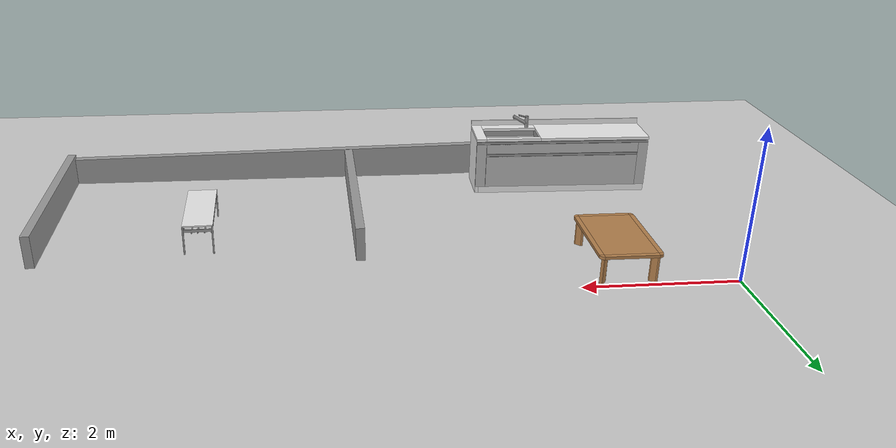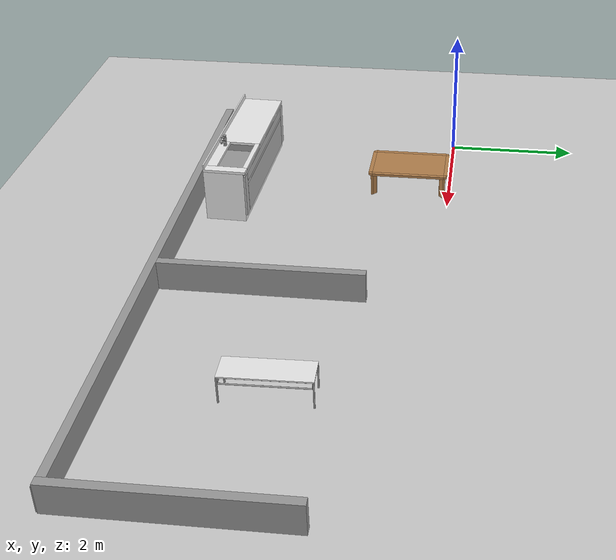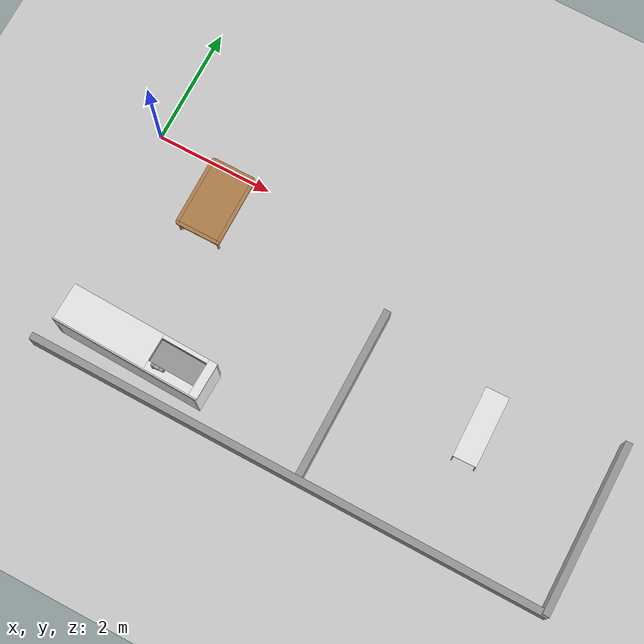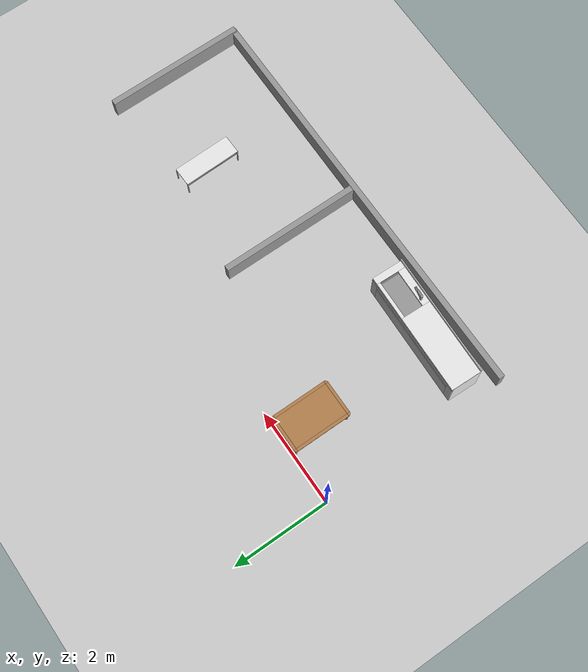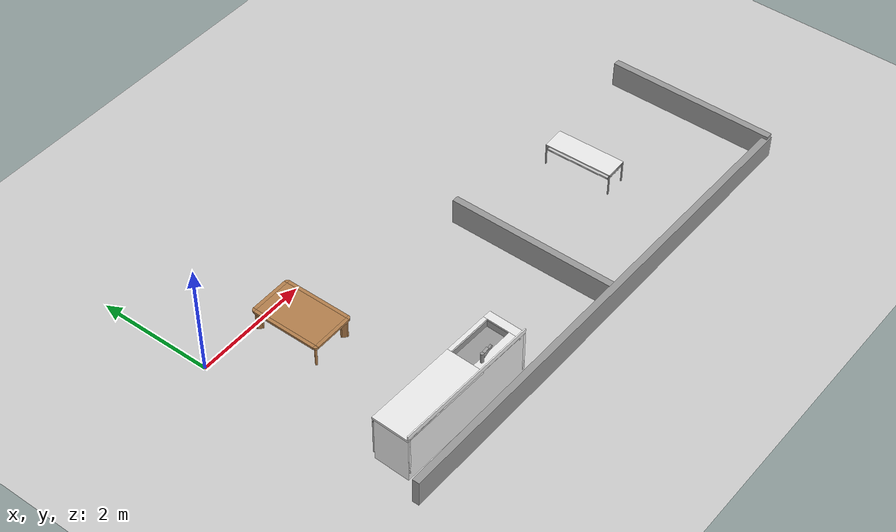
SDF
<sdf version="1.7">
 <world name="default">
  <model name="ground_plane">
   <static>1</static>
   <link name="link">
    <collision name="collision">
     <geometry><plane><normal>0 0 1</normal><size>100 100</size></plane></geometry>
     <surface><friction><ode><mu>100</mu><mu2>50</mu2></ode></friction></surface>
    </collision>
    <visual name="visual">
     <cast_shadows>0</cast_shadows>
     <geometry><plane><normal>0 0 1</normal><size>100 100</size></plane></geometry>
     <material>
      <script><uri>file://media/materials/scripts/gazebo.material</uri><name>Gazebo/Grey</name></script>
     </material>
    </visual>
   </link>
  </model>
  <model name="wall_clone">
   <link name="link">
    <inertial>
     <mass>1</mass>
     <inertia>
      <ixx>0.166667</ixx>
      <ixy>0</ixy>
      <ixz>0</ixz>
      <iyy>0.166667</iyy>
      <iyz>0</iyz>
      <izz>0.166667</izz>
     </inertia>
    </inertial>
    <visual name="visual">
     <geometry><box><size>0.120264 8.94791 0.469751</size></box></geometry>
     <material>
      <script><name>Gazebo/Grey</name><uri>file://media/materials/scripts/gazebo.material</uri></script>
      <shader type="pixel"/>
     </material>
    </visual>
    <collision name="collision">
     <geometry><box><size>0.120264 8.94791 0.469751</size></box></geometry>
     <surface>
      <friction>
       <ode><mu>1</mu><mu2>1</mu2><fdir1>0 0 0</fdir1><slip1>0</slip1><slip2>0</slip2></ode>
       <torsional>
        <coefficient>1</coefficient>
        <patch_radius>0</patch_radius>
        <surface_radius>0</surface_radius>
        <use_patch_radius>1</use_patch_radius>
        <ode><slip>0</slip></ode>
       </torsional>
      </friction>
      <bounce><restitution_coefficient>0</restitution_coefficient><threshold>1e+06</threshold></bounce>
      <contact>
       <collide_without_contact>0</collide_without_contact>
       <collide_without_contact_bitmask>1</collide_without_contact_bitmask>
       <collide_bitmask>1</collide_bitmask>
       <ode>
        <soft_cfm>0</soft_cfm>
        <soft_erp>0.2</soft_erp>
        <kp>1e+13</kp>
        <kd>1</kd>
        <max_vel>0.01</max_vel>
        <min_depth>0</min_depth>
       </ode>
       <bullet>
        <split_impulse>1</split_impulse>
        <split_impulse_penetration_threshold>-0.01</split_impulse_penetration_threshold>
        <soft_cfm>0</soft_cfm>
        <soft_erp>0.2</soft_erp>
        <kp>1e+13</kp>
        <kd>1</kd>
       </bullet>
      </contact>
     </surface>
    </collision>
   </link>
   <static>1</static>
   <pose>4.43377 -3.93577 0.206052 -0.015237 0.003622 -1.57495</pose>
  </model>
  <model name="wall_3m_clone">
   <link name="link">
    <inertial>
     <mass>0.327712</mass>
     <inertia>
      <ixx>0.240849</ixx>
      <ixy>0</ixy>
      <ixz>0</ixz>
      <iyy>0.00642123</iyy>
      <iyz>0</iyz>
      <izz>0.235218</izz>
     </inertia>
    </inertial>
    <visual name="visual">
     <geometry><box><size>0.120264 2.93234 0.469751</size></box></geometry>
     <material>
      <script><name>Gazebo/Grey</name><uri>file://media/materials/scripts/gazebo.material</uri></script>
      <shader type="pixel"/>
     </material>
    </visual>
    <collision name="collision">
     <geometry><box><size>0.120264 2.93234 0.469751</size></box></geometry>
     <surface>
      <friction>
       <ode><mu>1</mu><mu2>1</mu2><fdir1>0 0 0</fdir1><slip1>0</slip1><slip2>0</slip2></ode>
       <torsional>
        <coefficient>1</coefficient>
        <patch_radius>0</patch_radius>
        <surface_radius>0</surface_radius>
        <use_patch_radius>1</use_patch_radius>
        <ode><slip>0</slip></ode>
       </torsional>
      </friction>
      <bounce><restitution_coefficient>0</restitution_coefficient><threshold>1e+06</threshold></bounce>
      <contact>
       <collide_without_contact>0</collide_without_contact>
       <collide_without_contact_bitmask>1</collide_without_contact_bitmask>
       <collide_bitmask>1</collide_bitmask>
       <ode>
        <soft_cfm>0</soft_cfm>
        <soft_erp>0.2</soft_erp>
        <kp>1e+13</kp>
        <kd>1</kd>
        <max_vel>0.01</max_vel>
        <min_depth>0</min_depth>
       </ode>
       <bullet>
        <split_impulse>1</split_impulse>
        <split_impulse_penetration_threshold>-0.01</split_impulse_penetration_threshold>
        <soft_cfm>0</soft_cfm>
        <soft_erp>0.2</soft_erp>
        <kp>1e+13</kp>
        <kd>1</kd>
       </bullet>
      </contact>
     </surface>
    </collision>
   </link>
   <static>1</static>
   <pose>4.64146 -2.42164 0.206052 0.00367 0.015225 -0.000955</pose>
  </model>
  <model name="wall_3m_clone_1">
   <link name="link">
    <inertial>
     <mass>0.327712</mass>
     <inertia>
      <ixx>0.240849</ixx>
      <ixy>0</ixy>
      <ixz>0</ixz>
      <iyy>0.00642123</iyy>
      <iyz>0</iyz>
      <izz>0.235218</izz>
     </inertia>
    </inertial>
    <visual name="visual">
     <geometry><box><size>0.120264 2.93234 0.469751</size></box></geometry>
     <material>
      <script><name>Gazebo/Grey</name><uri>file://media/materials/scripts/gazebo.material</uri></script>
      <shader type="pixel"/>
     </material>
    </visual>
    <collision name="collision">
     <geometry><box><size>0.120264 2.93234 0.469751</size></box></geometry>
     <surface>
      <friction>
       <ode><mu>1</mu><mu2>1</mu2><fdir1>0 0 0</fdir1><slip1>0</slip1><slip2>0</slip2></ode>
       <torsional>
        <coefficient>1</coefficient>
        <patch_radius>0</patch_radius>
        <surface_radius>0</surface_radius>
        <use_patch_radius>1</use_patch_radius>
        <ode><slip>0</slip></ode>
       </torsional>
      </friction>
      <bounce><restitution_coefficient>0</restitution_coefficient><threshold>1e+06</threshold></bounce>
      <contact>
       <collide_without_contact>0</collide_without_contact>
       <collide_without_contact_bitmask>1</collide_without_contact_bitmask>
       <collide_bitmask>1</collide_bitmask>
       <ode>
        <soft_cfm>0</soft_cfm>
        <soft_erp>0.2</soft_erp>
        <kp>1e+13</kp>
        <kd>1</kd>
        <max_vel>0.01</max_vel>
        <min_depth>0</min_depth>
       </ode>
       <bullet>
        <split_impulse>1</split_impulse>
        <split_impulse_penetration_threshold>-0.01</split_impulse_penetration_threshold>
        <soft_cfm>0</soft_cfm>
        <soft_erp>0.2</soft_erp>
        <kp>1e+13</kp>
        <kd>1</kd>
       </bullet>
      </contact>
     </surface>
    </collision>
   </link>
   <static>1</static>
   <pose>8.85891 -2.52434 0.196172 -0.003765 -0.015202 -3.13632</pose>
  </model>
  <model name="kitchen_lowtable">
   <link name="link">
    <inertial>
     <mass>10</mass>
     <inertia><ixx>1</ixx><ixy>0</ixy><ixz>0</ixz><iyy>1</iyy><iyz>0</iyz><izz>1</izz></inertia>
    </inertial>
    <visual name="center_board">
     <pose>0 0 0.38 0 -0 0</pose>
     <geometry><box><size>0.68 1.13 0.04</size></box></geometry>
     <material>
      <script><uri>model://base_materials/wood/scripts/wood.material</uri><name>base_materials/wood</name></script>
     </material>
    </visual>
    <collision name="collision_center_board">
     <pose>0 0 0.38 0 -0 0</pose>
     <geometry><box><size>0.68 1.13 0.04</size></box></geometry>
    </collision>
    <visual name="front_board">
     <pose>0.37 0 0.38 0 -0 0</pose>
     <geometry><box><size>0.06 1.13 0.04</size></box></geometry>
     <material>
      <script><uri>model://base_materials/wood/scripts/wood.material</uri><name>base_materials/wood</name></script>
     </material>
    </visual>
    <collision name="collision_front_board">
     <pose>0.37 0 0.38 0 -0 0</pose>
     <geometry><box><size>0.06 1.13 0.04</size></box></geometry>
    </collision>
    <visual name="back_board">
     <pose>-0.37 0 0.38 0 -0 0</pose>
     <geometry><box><size>0.06 1.13 0.04</size></box></geometry>
     <material>
      <script><uri>model://base_materials/wood/scripts/wood.material</uri><name>base_materials/wood</name></script>
     </material>
    </visual>
    <collision name="collision_back_board">
     <pose>-0.37 0 0.38 0 -0 0</pose>
     <geometry><box><size>0.06 1.13 0.04</size></box></geometry>
    </collision>
    <visual name="right_board">
     <pose>0 0.595 0.38 0 -0 0</pose>
     <geometry><box><size>0.68 0.06 0.04</size></box></geometry>
     <material>
      <script><uri>model://base_materials/wood/scripts/wood.material</uri><name>base_materials/wood</name></script>
     </material>
    </visual>
    <collision name="collision_right_board">
     <pose>0 0.595 0.38 0 -0 0</pose>
     <geometry><box><size>0.68 0.06 0.04</size></box></geometry>
    </collision>
    <visual name="left_board">
     <pose>0 -0.595 0.38 0 -0 0</pose>
     <geometry><box><size>0.68 0.06 0.04</size></box></geometry>
     <material>
      <script><uri>model://base_materials/wood/scripts/wood.material</uri><name>base_materials/wood</name></script>
     </material>
    </visual>
    <collision name="collision_left_board">
     <pose>0 -0.595 0.38 0 -0 0</pose>
     <geometry><box><size>0.68 0.06 0.04</size></box></geometry>
    </collision>
    <visual name="front_right_corner_board">
     <pose>0.34 0.565 0.38 0 -0 0</pose>
     <geometry><cylinder><radius>0.06</radius><length>0.039</length></cylinder></geometry>
     <material>
      <script><uri>model://base_materials/wood/scripts/wood.material</uri><name>base_materials/wood</name></script>
     </material>
    </visual>
    <collision name="collision_front_right_corner_board">
     <pose>0.34 0.565 0.38 0 -0 0</pose>
     <geometry><cylinder><radius>0.06</radius><length>0.039</length></cylinder></geometry>
    </collision>
    <visual name="front_left_corner_board">
     <pose>0.34 -0.565 0.38 0 -0 0</pose>
     <geometry><cylinder><radius>0.06</radius><length>0.039</length></cylinder></geometry>
     <material>
      <script><uri>model://base_materials/wood/scripts/wood.material</uri><name>base_materials/wood</name></script>
     </material>
    </visual>
    <collision name="collision_front_left_corner_board">
     <pose>0.34 -0.565 0.38 0 -0 0</pose>
     <geometry><cylinder><radius>0.06</radius><length>0.039</length></cylinder></geometry>
    </collision>
    <visual name="front_back_right_corner_board">
     <pose>-0.34 0.565 0.38 0 -0 0</pose>
     <geometry><cylinder><radius>0.06</radius><length>0.039</length></cylinder></geometry>
     <material>
      <script><uri>model://base_materials/wood/scripts/wood.material</uri><name>base_materials/wood</name></script>
     </material>
    </visual>
    <collision name="collision_back_right_corner_board">
     <pose>-0.34 0.565 0.38 0 -0 0</pose>
     <geometry><cylinder><radius>0.06</radius><length>0.039</length></cylinder></geometry>
    </collision>
    <visual name="front_back_left_corner_board">
     <pose>-0.34 -0.565 0.38 0 -0 0</pose>
     <geometry><cylinder><radius>0.06</radius><length>0.039</length></cylinder></geometry>
     <material>
      <script><uri>model://base_materials/wood/scripts/wood.material</uri><name>base_materials/wood</name></script>
     </material>
    </visual>
    <collision name="collision_back_left_corner_board">
     <pose>-0.34 -0.565 0.38 0 -0 0</pose>
     <geometry><cylinder><radius>0.06</radius><length>0.039</length></cylinder></geometry>
    </collision>
    <visual name="front_left_corner_frame1">
     <pose>0.345858 -0.57086 0.18 0 -0 0</pose>
     <geometry><cylinder><radius>0.02</radius><length>0.36</length></cylinder></geometry>
     <material>
      <script><uri>model://base_materials/wood/scripts/wood.material</uri><name>base_materials/wood</name></script>
     </material>
    </visual>
    <collision name="collision_front_left_corner_frame1">
     <pose>0.345858 -0.57086 0.18 0 -0 0</pose>
     <geometry><cylinder><radius>0.02</radius><length>0.36</length></cylinder></geometry>
    </collision>
    <visual name="front_left_corner_frame2">
     <pose>0.317574 -0.54257 0.18 0 -0 0.7854</pose>
     <geometry><box><size>0.04 0.08 0.36</size></box></geometry>
     <material>
      <script><uri>model://base_materials/wood/scripts/wood.material</uri><name>base_materials/wood</name></script>
     </material>
    </visual>
    <collision name="collision_front_left_corner_frame2">
     <pose>0.317574 -0.54257 0.18 0 -0 0.7854</pose>
     <geometry><box><size>0.04 0.08 0.36</size></box></geometry>
    </collision>
    <visual name="front_left_corner_frame3">
     <pose>0.289289 -0.51429 0.18 0 -0 0</pose>
     <geometry><cylinder><radius>0.02</radius><length>0.36</length></cylinder></geometry>
     <material>
      <script><uri>model://base_materials/wood/scripts/wood.material</uri><name>base_materials/wood</name></script>
     </material>
    </visual>
    <collision name="collision_front_left_corner_frame3">
     <pose>0.289289 -0.51429 0.18 0 -0 0</pose>
     <geometry><cylinder><radius>0.02</radius><length>0.36</length></cylinder></geometry>
    </collision>
    <visual name="front_right_corner_frame1">
     <pose>0.345858 0.57086 0.18 0 -0 0</pose>
     <geometry><cylinder><radius>0.02</radius><length>0.36</length></cylinder></geometry>
     <material>
      <script><uri>model://base_materials/wood/scripts/wood.material</uri><name>base_materials/wood</name></script>
     </material>
    </visual>
    <collision name="collision_front_right_corner_frame1">
     <pose>0.345858 0.57086 0.18 0 -0 0</pose>
     <geometry><cylinder><radius>0.02</radius><length>0.36</length></cylinder></geometry>
    </collision>
    <visual name="front_right_corner_frame2">
     <pose>0.317574 0.54257 0.18 0 0 -0.7854</pose>
     <geometry><box><size>0.04 0.08 0.36</size></box></geometry>
     <material>
      <script><uri>model://base_materials/wood/scripts/wood.material</uri><name>base_materials/wood</name></script>
     </material>
    </visual>
    <collision name="collision_front_right_corner_frame2">
     <pose>0.317574 0.54257 0.18 0 0 -0.7854</pose>
     <geometry><box><size>0.04 0.08 0.36</size></box></geometry>
    </collision>
    <visual name="front_right_corner_frame3">
     <pose>0.289289 0.51429 0.18 0 -0 0</pose>
     <geometry><cylinder><radius>0.02</radius><length>0.36</length></cylinder></geometry>
     <material>
      <script><uri>model://base_materials/wood/scripts/wood.material</uri><name>base_materials/wood</name></script>
     </material>
    </visual>
    <collision name="collision_front_right_corner_frame3">
     <pose>0.289289 0.51429 0.18 0 -0 0</pose>
     <geometry><cylinder><radius>0.02</radius><length>0.36</length></cylinder></geometry>
    </collision>
    <visual name="back_left_corner_frame1">
     <pose>-0.345858 -0.57086 0.18 0 -0 0</pose>
     <geometry><cylinder><radius>0.02</radius><length>0.36</length></cylinder></geometry>
     <material>
      <script><uri>model://base_materials/wood/scripts/wood.material</uri><name>base_materials/wood</name></script>
     </material>
    </visual>
    <collision name="collision_back_left_corner_frame1">
     <pose>-0.345858 -0.57086 0.18 0 -0 0</pose>
     <geometry><cylinder><radius>0.02</radius><length>0.36</length></cylinder></geometry>
    </collision>
    <visual name="back_left_corner_frame2">
     <pose>-0.317574 -0.54257 0.18 0 0 -0.7854</pose>
     <geometry><box><size>0.04 0.08 0.36</size></box></geometry>
     <material>
      <script><uri>model://base_materials/wood/scripts/wood.material</uri><name>base_materials/wood</name></script>
     </material>
    </visual>
    <collision name="collision_back_left_corner_frame2">
     <pose>-0.317574 -0.54257 0.18 0 0 -0.7854</pose>
     <geometry><box><size>0.04 0.08 0.36</size></box></geometry>
    </collision>
    <visual name="back_left_corner_frame3">
     <pose>-0.289289 -0.51429 0.18 0 -0 0</pose>
     <geometry><cylinder><radius>0.02</radius><length>0.36</length></cylinder></geometry>
     <material>
      <script><uri>model://base_materials/wood/scripts/wood.material</uri><name>base_materials/wood</name></script>
     </material>
    </visual>
    <collision name="collision_back_left_corner_frame3">
     <pose>-0.289289 -0.51429 0.18 0 -0 0</pose>
     <geometry><cylinder><radius>0.02</radius><length>0.36</length></cylinder></geometry>
    </collision>
    <visual name="back_right_corner_frame1">
     <pose>-0.345858 0.57086 0.18 0 -0 0</pose>
     <geometry><cylinder><radius>0.02</radius><length>0.36</length></cylinder></geometry>
     <material>
      <script><uri>model://base_materials/wood/scripts/wood.material</uri><name>base_materials/wood</name></script>
     </material>
    </visual>
    <collision name="collision_back_right_corner_frame1">
     <pose>-0.345858 0.57086 0.18 0 -0 0</pose>
     <geometry><cylinder><radius>0.02</radius><length>0.36</length></cylinder></geometry>
    </collision>
    <visual name="back_right_corner_frame2">
     <pose>-0.317574 0.54257 0.18 0 -0 0.7854</pose>
     <geometry><box><size>0.04 0.08 0.36</size></box></geometry>
     <material>
      <script><uri>model://base_materials/wood/scripts/wood.material</uri><name>base_materials/wood</name></script>
     </material>
    </visual>
    <collision name="collision_back_right_corner_frame2">
     <pose>-0.317574 0.54257 0.18 0 -0 0.7854</pose>
     <geometry><box><size>0.04 0.08 0.36</size></box></geometry>
    </collision>
    <visual name="back_right_corner_frame3">
     <pose>-0.289289 0.51429 0.18 0 -0 0</pose>
     <geometry><cylinder><radius>0.02</radius><length>0.36</length></cylinder></geometry>
     <material>
      <script><uri>model://base_materials/wood/scripts/wood.material</uri><name>base_materials/wood</name></script>
     </material>
    </visual>
    <collision name="collision_back_right_corner_frame3">
     <pose>-0.289289 0.51429 0.18 0 -0 0</pose>
     <geometry><cylinder><radius>0.02</radius><length>0.36</length></cylinder></geometry>
    </collision>
    <velocity_decay><linear>0</linear><angular>0</angular></velocity_decay>
   </link>
   <static>1</static>
   <pose>1.40108 -0.64189 0 0 -0 0</pose>
  </model>
  <model name="wrc_long_table">
   <static>1</static>
   <link name="link">
    <inertial><mass>1</mass></inertial>
    <collision name="top">
     <pose>0 0 0.39 0 -0 0</pose>
     <geometry><box><size>1.2 0.4 0.02</size></box></geometry>
    </collision>
    <visual name="top_v">
     <pose>0 0 0.39 0 -0 0</pose>
     <geometry><box><size>1.2 0.4 0.02</size></box></geometry>
     <material>
      <script><uri>file://media/materials/scripts/gazebo.material</uri><name>Gazebo/White</name></script>
     </material>
    </visual>
    <collision name="leg1">
     <pose>0.59 0.19 0.185 0 -0 0</pose>
     <geometry><box><size>0.02 0.02 0.4</size></box></geometry>
    </collision>
    <visual name="leg1_v">
     <pose>0.59 0.19 0.185 0 -0 0</pose>
     <geometry><box><size>0.02 0.02 0.4</size></box></geometry>
     <material>
      <script><uri>file://media/materials/scripts/gazebo.material</uri><name>Gazebo/Gray</name></script>
     </material>
    </visual>
    <collision name="leg2">
     <pose>-0.59 0.19 0.185 0 -0 0</pose>
     <geometry><box><size>0.02 0.02 0.4</size></box></geometry>
    </collision>
    <visual name="leg2_v">
     <pose>-0.59 0.19 0.185 0 -0 0</pose>
     <geometry><box><size>0.02 0.02 0.4</size></box></geometry>
     <material>
      <script><uri>file://media/materials/scripts/gazebo.material</uri><name>Gazebo/Gray</name></script>
     </material>
    </visual>
    <collision name="leg3">
     <pose>0.59 -0.19 0.185 0 -0 0</pose>
     <geometry><box><size>0.02 0.02 0.4</size></box></geometry>
    </collision>
    <visual name="leg3_v">
     <pose>0.59 -0.19 0.185 0 -0 0</pose>
     <geometry><box><size>0.02 0.02 0.4</size></box></geometry>
     <material>
      <script><uri>file://media/materials/scripts/gazebo.material</uri><name>Gazebo/Gray</name></script>
     </material>
    </visual>
    <collision name="leg4">
     <pose>-0.59 -0.19 0.185 0 -0 0</pose>
     <geometry><box><size>0.02 0.02 0.4</size></box></geometry>
    </collision>
    <visual name="leg4_v">
     <pose>-0.59 -0.19 0.185 0 -0 0</pose>
     <geometry><box><size>0.02 0.02 0.4</size></box></geometry>
     <material>
      <script><uri>file://media/materials/scripts/gazebo.material</uri><name>Gazebo/Gray</name></script>
     </material>
    </visual>
    <collision name="side_panel1">
     <pose>0.575 0 0.32 0 -0 0</pose>
     <geometry><box><size>0.01 0.4 0.04</size></box></geometry>
    </collision>
    <visual name="side_panel1_v">
     <pose>0.575 0 0.32 0 -0 0</pose>
     <geometry><box><size>0.01 0.4 0.04</size></box></geometry>
     <material>
      <script><uri>file://media/materials/scripts/gazebo.material</uri><name>Gazebo/Gray</name></script>
     </material>
    </visual>
    <collision name="side_panel2">
     <pose>-0.575 0 0.32 0 -0 0</pose>
     <geometry><box><size>0.01 0.4 0.04</size></box></geometry>
    </collision>
    <visual name="side_panel2_v">
     <pose>-0.575 0 0.32 0 -0 0</pose>
     <geometry><box><size>0.01 0.4 0.04</size></box></geometry>
     <material>
      <script><uri>file://media/materials/scripts/gazebo.material</uri><name>Gazebo/Gray</name></script>
     </material>
    </visual>
    <collision name="bar1">
     <pose>0 0.2 0.29 0 1.57 0</pose>
     <geometry><cylinder><radius>0.01</radius><length>1.16</length></cylinder></geometry>
    </collision>
    <visual name="bar1_v">
     <pose>0 0.19 0.29 0 1.57 0</pose>
     <geometry><cylinder><radius>0.01</radius><length>1.16</length></cylinder></geometry>
     <material>
      <script><uri>file://media/materials/scripts/gazebo.material</uri><name>Gazebo/Gray</name></script>
     </material>
    </visual>
    <collision name="bar2">
     <pose>0 0.08 0.29 0 1.57 0</pose>
     <geometry><cylinder><radius>0.01</radius><length>1.16</length></cylinder></geometry>
    </collision>
    <visual name="bar2_v">
     <pose>0 0.08 0.29 0 1.57 0</pose>
     <geometry><cylinder><radius>0.01</radius><length>1.16</length></cylinder></geometry>
     <material>
      <script><uri>file://media/materials/scripts/gazebo.material</uri><name>Gazebo/Gray</name></script>
     </material>
    </visual>
    <collision name="bar3">
     <pose>0 0 0.29 0 1.57 0</pose>
     <geometry><cylinder><radius>0.01</radius><length>1.16</length></cylinder></geometry>
    </collision>
    <visual name="bar3_v">
     <pose>0 0 0.29 0 1.57 0</pose>
     <geometry><cylinder><radius>0.01</radius><length>1.16</length></cylinder></geometry>
     <material>
      <script><uri>file://media/materials/scripts/gazebo.material</uri><name>Gazebo/Gray</name></script>
     </material>
    </visual>
    <collision name="bar4">
     <pose>0 -0.08 0.29 0 1.57 0</pose>
     <geometry><cylinder><radius>0.01</radius><length>1.16</length></cylinder></geometry>
    </collision>
    <visual name="bar4_v">
     <pose>0 -0.09 0.29 0 1.57 0</pose>
     <geometry><cylinder><radius>0.01</radius><length>1.16</length></cylinder></geometry>
     <material>
      <script><uri>file://media/materials/scripts/gazebo.material</uri><name>Gazebo/Gray</name></script>
     </material>
    </visual>
    <collision name="bar5">
     <pose>0 -0.18 0.29 0 1.57 0</pose>
     <geometry><cylinder><radius>0.01</radius><length>1.16</length></cylinder></geometry>
    </collision>
    <visual name="bar5_v">
     <pose>0 -0.18 0.29 0 1.57 0</pose>
     <geometry><cylinder><radius>0.01</radius><length>1.16</length></cylinder></geometry>
     <material>
      <script><uri>file://media/materials/scripts/gazebo.material</uri><name>Gazebo/Gray</name></script>
     </material>
    </visual>
   </link>
   <pose>6.75209 -1.90135 0 0 0 -1.54567</pose>
  </model>
  <model name="sink">
   <link name="link">
    <inertial>
     <mass>10</mass>
     <inertia><ixx>1</ixx><ixy>0</ixy><ixz>0</ixz><iyy>1</iyy><iyz>0</iyz><izz>1</izz></inertia>
    </inertial>
    <visual name="faucet1">
     <pose>-0.52 0.82 0.94 0 -0 0</pose>
     <geometry><cylinder><radius>0.027</radius><length>0.18</length></cylinder></geometry>
     <material>
      <script><uri>model://base_materials/color/scripts</uri><name>hsr_color/grey</name></script>
     </material>
    </visual>
    <collision name="collision_faucet1">
     <pose>-0.52 0.82 0.94 0 -0 0</pose>
     <geometry><cylinder><radius>0.027</radius><length>0.18</length></cylinder></geometry>
    </collision>
    <visual name="faucet2">
     <pose>-0.52 0.72 0.97 1.047 -0 0</pose>
     <geometry><cylinder><radius>0.024</radius><length>0.24</length></cylinder></geometry>
     <material>
      <script><uri>model://base_materials/color/scripts</uri><name>hsr_color/grey</name></script>
     </material>
    </visual>
    <collision name="collision_faucet2">
     <pose>-0.52 0.72 0.97 1.047 -0 0</pose>
     <geometry><cylinder><radius>0.024</radius><length>0.24</length></cylinder></geometry>
    </collision>
    <visual name="faucet3">
     <pose>-0.52 0.63 1 0 -0 0</pose>
     <geometry><cylinder><radius>0.015</radius><length>0.04</length></cylinder></geometry>
     <material>
      <script><uri>model://base_materials/color/scripts</uri><name>hsr_color/grey</name></script>
     </material>
    </visual>
    <collision name="collision_faucet3">
     <pose>-0.52 0.63 1 0 -0 0</pose>
     <geometry><cylinder><radius>0.015</radius><length>0.04</length></cylinder></geometry>
    </collision>
    <visual name="faucet_handle">
     <pose>-0.52 0.75 1.03 1.309 -0 0</pose>
     <geometry><box><size>0.048 0.01 0.11</size></box></geometry>
     <material>
      <script><uri>model://base_materials/color/scripts</uri><name>hsr_color/grey</name></script>
     </material>
    </visual>
    <collision name="collision_faucet_handle">
     <pose>-0.52 0.75 1.03 1.309 -0 0</pose>
     <geometry><box><size>0.048 0.01 0.11</size></box></geometry>
    </collision>
    <visual name="back_bucket">
     <pose>-0.57 0.545 0.74 0 -0 0</pose>
     <geometry><box><size>0.02 0.8 0.18</size></box></geometry>
     <material>
      <script><uri>model://base_materials/color/scripts</uri><name>hsr_color/grey</name></script>
     </material>
    </visual>
    <collision name="collision_back_bucket">
     <pose>-0.57 0.545 0.74 0 -0 0</pose>
     <geometry><box><size>0.02 0.8 0.18</size></box></geometry>
    </collision>
    <visual name="front_bucket">
     <pose>-0.06 0.545 0.74 0 -0 0</pose>
     <geometry><box><size>0.02 0.8 0.18</size></box></geometry>
     <material>
      <script><uri>model://base_materials/color/scripts</uri><name>hsr_color/grey</name></script>
     </material>
    </visual>
    <collision name="collision_fromt_bucket">
     <pose>-0.06 0.545 0.74 0 -0 0</pose>
     <geometry><box><size>0.02 0.8 0.18</size></box></geometry>
    </collision>
    <visual name="left_bucket">
     <pose>-0.32 0.14 0.74 0 -0 0</pose>
     <geometry><box><size>0.5 0.02 0.18</size></box></geometry>
     <material>
      <script><uri>model://base_materials/color/scripts</uri><name>hsr_color/grey</name></script>
     </material>
    </visual>
    <collision name="collision_left_bucket">
     <pose>-0.32 0.14 0.74 0 -0 0</pose>
     <geometry><box><size>0.5 0.02 0.18</size></box></geometry>
    </collision>
    <visual name="right_bucket">
     <pose>-0.32 0.96 0.74 0 -0 0</pose>
     <geometry><box><size>0.5 0.02 0.18</size></box></geometry>
     <material>
      <script><uri>model://base_materials/color/scripts</uri><name>hsr_color/grey</name></script>
     </material>
    </visual>
    <collision name="collision_right_bucket">
     <pose>-0.32 0.96 0.74 0 -0 0</pose>
     <geometry><box><size>0.5 0.02 0.18</size></box></geometry>
    </collision>
    <visual name="bottom_bucket">
     <pose>-0.33 0.555 0.695 0 -0 0</pose>
     <geometry><box><size>0.52 0.82 0.02</size></box></geometry>
     <material>
      <script><uri>model://base_materials/color/scripts</uri><name>hsr_color/grey</name></script>
     </material>
    </visual>
    <collision name="collision_bottom_bucket">
     <pose>-0.33 0.555 0.695 0 -0 0</pose>
     <geometry><box><size>0.52 0.82 0.02</size></box></geometry>
    </collision>
    <visual name="front_board">
     <pose>-0.04 1.275 0.425 0 -0 0</pose>
     <geometry><box><size>0.02 2.549 0.85</size></box></geometry>
     <material>
      <script><uri>model://base_materials/color/scripts</uri><name>hsr_color/white</name></script>
     </material>
    </visual>
    <collision name="collision_front_board">
     <pose>-0.04 1.275 0.425 0 -0 0</pose>
     <geometry><box><size>0.02 2.549 0.85</size></box></geometry>
    </collision>
    <visual name="back_board1">
     <pose>-0.625 1.275 0.425 0 -0 0</pose>
     <geometry><box><size>0.05 2.549 0.85</size></box></geometry>
     <material>
      <script><uri>model://base_materials/color/scripts</uri><name>hsr_color/white</name></script>
     </material>
    </visual>
    <collision name="collision_back_board1">
     <pose>-0.625 1.275 0.425 0 -0 0</pose>
     <geometry><box><size>0.05 2.549 0.85</size></box></geometry>
    </collision>
    <visual name="left_board">
     <pose>-0.34 0.025 0.425 0 -0 0</pose>
     <geometry><box><size>0.62 0.05 0.85</size></box></geometry>
     <material>
      <script><uri>model://base_materials/color/scripts</uri><name>hsr_color/white</name></script>
     </material>
    </visual>
    <collision name="collision_left_board">
     <pose>-0.34 0.025 0.425 0 -0 0</pose>
     <geometry><box><size>0.62 0.05 0.85</size></box></geometry>
    </collision>
    <visual name="right_board">
     <pose>-0.34 2.525 0.425 0 -0 0</pose>
     <geometry><box><size>0.62 0.05 0.85</size></box></geometry>
     <material>
      <script><uri>model://base_materials/color/scripts</uri><name>hsr_color/white</name></script>
     </material>
    </visual>
    <collision name="collision_right_board">
     <pose>-0.34 2.525 0.425 0 -0 0</pose>
     <geometry><box><size>0.62 0.05 0.85</size></box></geometry>
    </collision>
    <visual name="top_left_board">
     <pose>-0.325 0.0725 0.835 0 -0 0</pose>
     <geometry><box><size>0.65 0.146 0.04</size></box></geometry>
     <material>
      <script><uri>model://base_materials/color/scripts</uri><name>hsr_color/white</name></script>
     </material>
    </visual>
    <collision name="collision_top_left_board">
     <pose>-0.325 0.0725 0.835 0 -0 0</pose>
     <geometry><box><size>0.65 0.146 0.04</size></box></geometry>
    </collision>
    <visual name="top_right_board">
     <pose>-0.325 1.7475 0.835 0 -0 0</pose>
     <geometry><box><size>0.65 1.606 0.04</size></box></geometry>
     <material>
      <script><uri>model://base_materials/color/scripts</uri><name>hsr_color/white</name></script>
     </material>
    </visual>
    <collision name="collision_top_right_board">
     <pose>-0.325 1.7475 0.835 0 -0 0</pose>
     <geometry><box><size>0.65 1.606 0.04</size></box></geometry>
    </collision>
    <visual name="top_front_board">
     <pose>-0.035 0.545 0.835 0 -0 0</pose>
     <geometry><box><size>0.07 0.8 0.04</size></box></geometry>
     <material>
      <script><uri>model://base_materials/color/scripts</uri><name>hsr_color/white</name></script>
     </material>
    </visual>
    <collision name="collision_top_front_board">
     <pose>-0.035 0.545 0.835 0 -0 0</pose>
     <geometry><box><size>0.07 0.8 0.04</size></box></geometry>
    </collision>
    <visual name="top_back_board">
     <pose>-0.56 0.545 0.835 0 -0 0</pose>
     <geometry><box><size>0.18 0.8 0.04</size></box></geometry>
     <material>
      <script><uri>model://base_materials/color/scripts</uri><name>hsr_color/white</name></script>
     </material>
    </visual>
    <collision name="collision_top_back_board">
     <pose>-0.56 0.545 0.835 0 -0 0</pose>
     <geometry><box><size>0.18 0.8 0.04</size></box></geometry>
    </collision>
    <visual name="back_board2">
     <pose>-0.64 1.275 0.895 0 -0 0</pose>
     <geometry><box><size>0.02 2.55 0.08</size></box></geometry>
     <material>
      <script><uri>model://base_materials/color/scripts</uri><name>hsr_color/white</name></script>
     </material>
    </visual>
    <collision name="collision_back_board2">
     <pose>-0.64 1.275 0.895 0 -0 0</pose>
     <geometry><box><size>0.02 2.55 0.08</size></box></geometry>
    </collision>
    <visual name="handle1_1">
     <pose>-0.015 1.275 0.81 0 -0 0</pose>
     <geometry><box><size>0.03 2.55 0.005</size></box></geometry>
     <material>
      <script><uri>model://base_materials/color/scripts</uri><name>hsr_color/grey</name></script>
     </material>
    </visual>
    <collision name="collision_handle1_1">
     <pose>-0.015 1.275 0.81 0 -0 0</pose>
     <geometry><box><size>0.03 2.55 0.005</size></box></geometry>
    </collision>
    <visual name="handle1_2">
     <pose>-0.029 1.275 0.7925 0 -0 0</pose>
     <geometry><box><size>0.005 2.55 0.04</size></box></geometry>
     <material>
      <script><uri>model://base_materials/color/scripts</uri><name>hsr_color/grey</name></script>
     </material>
    </visual>
    <collision name="collision_handle1_2">
     <pose>-0.029 1.275 0.7925 0 -0 0</pose>
     <geometry><box><size>0.005 2.55 0.04</size></box></geometry>
    </collision>
    <visual name="handle1_3">
     <pose>-0.015 1.275 0.77 0 -0 0</pose>
     <geometry><box><size>0.03 2.55 0.005</size></box></geometry>
     <material>
      <script><uri>model://base_materials/color/scripts</uri><name>hsr_color/grey</name></script>
     </material>
    </visual>
    <collision name="collision_handle1_3">
     <pose>-0.015 1.275 0.77 0 -0 0</pose>
     <geometry><box><size>0.03 2.55 0.005</size></box></geometry>
    </collision>
    <visual name="front_left_drawer">
     <pose>-0.015 0.0725 0.44 0 -0 0</pose>
     <geometry><box><size>0.03 0.145 0.66</size></box></geometry>
     <material>
      <script><uri>model://sink/scripts</uri><uri>model://sink/textures</uri><name>sink/001</name></script>
     </material>
    </visual>
    <collision name="collision_left_drawer">
     <pose>-0.015 0.0725 0.44 0 -0 0</pose>
     <geometry><box><size>0.03 0.145 0.66</size></box></geometry>
    </collision>
    <visual name="front_right_drawer">
     <pose>-0.015 2.4725 0.44 0 -0 0</pose>
     <geometry><box><size>0.03 0.145 0.66</size></box></geometry>
     <material>
      <script><uri>model://sink/scripts</uri><uri>model://sink/textures</uri><name>sink/001</name></script>
     </material>
    </visual>
    <collision name="collision_right_drawer">
     <pose>-0.015 2.4725 0.44 0 -0 0</pose>
     <geometry><box><size>0.03 0.145 0.66</size></box></geometry>
    </collision>
    <visual name="front_top_drawer">
     <pose>-0.015 1.275 0.6975 0 -0 0</pose>
     <geometry><box><size>0.03 2.25 0.145</size></box></geometry>
     <material>
      <script><uri>model://sink/scripts</uri><uri>model://sink/textures</uri><name>sink/001</name></script>
     </material>
    </visual>
    <collision name="collision_top_drawer">
     <pose>-0.015 1.275 0.6975 0 -0 0</pose>
     <geometry><box><size>0.03 2.25 0.145</size></box></geometry>
    </collision>
    <visual name="handle2_1">
     <pose>-0.015 1.275 0.62 0 -0 0</pose>
     <geometry><box><size>0.03 2.25 0.005</size></box></geometry>
     <material>
      <script><uri>model://base_materials/color/scripts</uri><name>hsr_color/grey</name></script>
     </material>
    </visual>
    <collision name="collision_handle2_1">
     <pose>-0.015 1.275 0.62 0 -0 0</pose>
     <geometry><box><size>0.03 2.25 0.005</size></box></geometry>
    </collision>
    <visual name="handle2_2">
     <pose>-0.029 1.275 0.6025 0 -0 0</pose>
     <geometry><box><size>0.005 2.25 0.04</size></box></geometry>
     <material>
      <script><uri>model://base_materials/color/scripts</uri><name>hsr_color/grey</name></script>
     </material>
    </visual>
    <collision name="collision_handle2_2">
     <pose>-0.029 1.275 0.6025 0 -0 0</pose>
     <geometry><box><size>0.005 2.25 0.04</size></box></geometry>
    </collision>
    <visual name="handle2_3">
     <pose>-0.015 1.275 0.58 0 -0 0</pose>
     <geometry><box><size>0.03 2.25 0.005</size></box></geometry>
     <material>
      <script><uri>model://base_materials/color/scripts</uri><name>hsr_color/grey</name></script>
     </material>
    </visual>
    <collision name="collision_handle2_3">
     <pose>-0.015 1.275 0.58 0 -0 0</pose>
     <geometry><box><size>0.03 2.25 0.005</size></box></geometry>
    </collision>
    <visual name="front_bottom_drawer">
     <pose>-0.015 1.275 0.345 0 -0 0</pose>
     <geometry><box><size>0.03 2.25 0.47</size></box></geometry>
     <material>
      <script><uri>model://sink/scripts</uri><uri>model://sink/textures</uri><name>sink/001</name></script>
     </material>
    </visual>
    <collision name="collision_bottom_drawer">
     <pose>-0.015 1.275 0.345 0 -0 0</pose>
     <geometry><box><size>0.03 2.25 0.47</size></box></geometry>
    </collision>
    <velocity_decay><linear>0</linear><angular>0</angular></velocity_decay>
   </link>
   <static>1</static>
   <pose>2.79607 -3.01414 0 0 -0 1.53923</pose>
  </model>
 </world>
</sdf>
